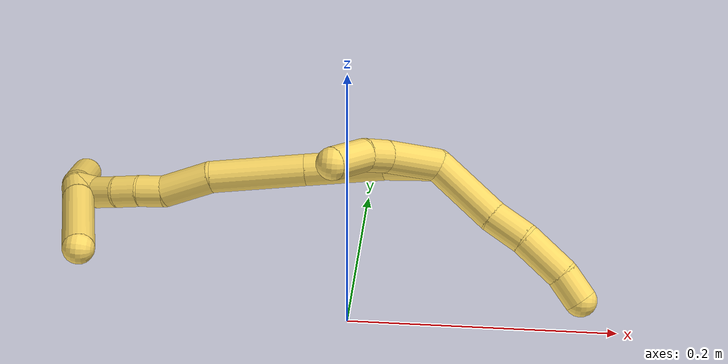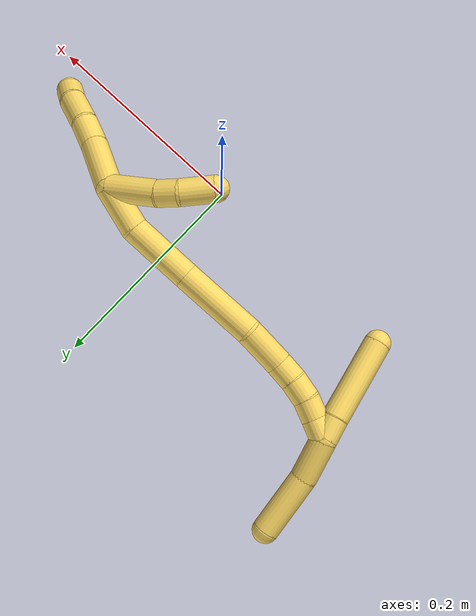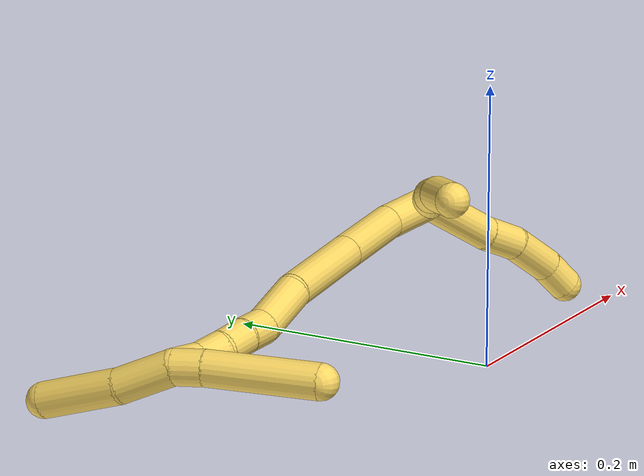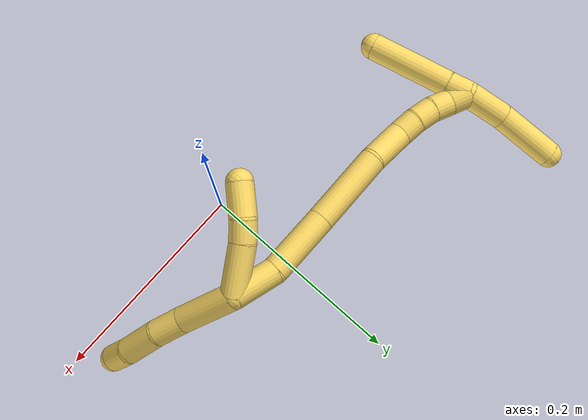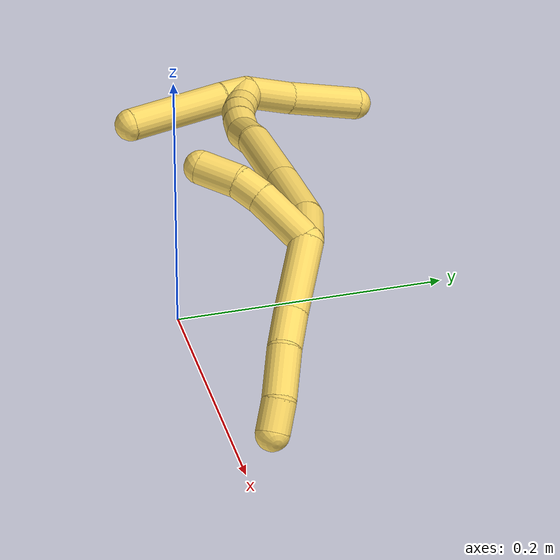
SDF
<sdf version="1.7">
 <world name="default">
  <model name="5">
   <static>0</static>
   <link name="5">
    <collision name="collision-cylinder-e_1_2_8">
     <pose>0.014771 -0.010506 -0.022636 2.70706 0.53444 1.78441</pose>
     <geometry><cylinder><radius>0.0125</radius><length>0.057998</length></cylinder></geometry>
     <surface>
      <friction><ode><mu>1.16</mu><mu2>1.16</mu2><slip1>0</slip1><slip2>0</slip2></ode></friction>
      <contact><ode><kp>1e+06</kp><kd>1</kd><max_vel>0</max_vel><min_depth>0.001</min_depth></ode></contact>
     </surface>
    </collision>
    <visual name="visual-cylinder-e_1_2_8">
     <pose>0.014771 -0.010506 -0.022636 2.70706 0.53444 1.78441</pose>
     <geometry><cylinder><radius>0.0125</radius><length>0.057998</length></cylinder></geometry>
     <material><ambient>1 0.858824 0.4 1</ambient></material>
    </visual>
    <collision name="collision-cylinder-e_2_8_9">
     <pose>0.036341 -0.024667 -0.057781 2.85727 0.480855 2.08477</pose>
     <geometry><cylinder><radius>0.0125</radius><length>0.029398</length></cylinder></geometry>
     <surface>
      <friction><ode><mu>1.16</mu><mu2>1.16</mu2><slip1>0</slip1><slip2>0</slip2></ode></friction>
      <contact><ode><kp>1e+06</kp><kd>1</kd><max_vel>0</max_vel><min_depth>0.001</min_depth></ode></contact>
     </surface>
    </collision>
    <visual name="visual-cylinder-e_2_8_9">
     <pose>0.036341 -0.024667 -0.057781 2.85727 0.480855 2.08477</pose>
     <geometry><cylinder><radius>0.0125</radius><length>0.029398</length></cylinder></geometry>
     <material><ambient>1 0.858824 0.4 1</ambient></material>
    </visual>
    <collision name="collision-cylinder-e_3_9_10">
     <pose>0.051261 -0.036838 -0.085452 2.62985 0.436927 1.40739</pose>
     <geometry><cylinder><radius>0.0125</radius><length>0.038384</length></cylinder></geometry>
     <surface>
      <friction><ode><mu>1.16</mu><mu2>1.16</mu2><slip1>0</slip1><slip2>0</slip2></ode></friction>
      <contact><ode><kp>1e+06</kp><kd>1</kd><max_vel>0</max_vel><min_depth>0.001</min_depth></ode></contact>
     </surface>
    </collision>
    <visual name="visual-cylinder-e_3_9_10">
     <pose>0.051261 -0.036838 -0.085452 2.62985 0.436927 1.40739</pose>
     <geometry><cylinder><radius>0.0125</radius><length>0.038384</length></cylinder></geometry>
     <material><ambient>1 0.858824 0.4 1</ambient></material>
    </visual>
    <collision name="collision-cylinder-e_4_10_6">
     <pose>0.065449 -0.052352 -0.108414 2.41036 0.524755 1.22351</pose>
     <geometry><cylinder><radius>0.0125</radius><length>0.02422</length></cylinder></geometry>
     <surface>
      <friction><ode><mu>1.16</mu><mu2>1.16</mu2><slip1>0</slip1><slip2>0</slip2></ode></friction>
      <contact><ode><kp>1e+06</kp><kd>1</kd><max_vel>0</max_vel><min_depth>0.001</min_depth></ode></contact>
     </surface>
    </collision>
    <visual name="visual-cylinder-e_4_10_6">
     <pose>0.065449 -0.052352 -0.108414 2.41036 0.524755 1.22351</pose>
     <geometry><cylinder><radius>0.0125</radius><length>0.02422</length></cylinder></geometry>
     <material><ambient>1 0.858824 0.4 1</ambient></material>
    </visual>
    <collision name="collision-cylinder-e_1_2_11">
     <pose>0.009322 0.008857 0.020146 -0.414187 0.400695 -0.085281</pose>
     <geometry><cylinder><radius>0.0125</radius><length>0.0478</length></cylinder></geometry>
     <surface>
      <friction><ode><mu>1.16</mu><mu2>1.16</mu2><slip1>0</slip1><slip2>0</slip2></ode></friction>
      <contact><ode><kp>1e+06</kp><kd>1</kd><max_vel>0</max_vel><min_depth>0.001</min_depth></ode></contact>
     </surface>
    </collision>
    <visual name="visual-cylinder-e_1_2_11">
     <pose>0.009322 0.008857 0.020146 -0.414187 0.400695 -0.085281</pose>
     <geometry><cylinder><radius>0.0125</radius><length>0.0478</length></cylinder></geometry>
     <material><ambient>1 0.858824 0.4 1</ambient></material>
    </visual>
    <collision name="collision-cylinder-e_2_11_12">
     <pose>0.024073 0.021569 0.048148 -0.456234 0.55524 -0.132128</pose>
     <geometry><cylinder><radius>0.0125</radius><length>0.020596</length></cylinder></geometry>
     <surface>
      <friction><ode><mu>1.16</mu><mu2>1.16</mu2><slip1>0</slip1><slip2>0</slip2></ode></friction>
      <contact><ode><kp>1e+06</kp><kd>1</kd><max_vel>0</max_vel><min_depth>0.001</min_depth></ode></contact>
     </surface>
    </collision>
    <visual name="visual-cylinder-e_2_11_12">
     <pose>0.024073 0.021569 0.048148 -0.456234 0.55524 -0.132128</pose>
     <geometry><cylinder><radius>0.0125</radius><length>0.020596</length></cylinder></geometry>
     <material><ambient>1 0.858824 0.4 1</ambient></material>
    </visual>
    <collision name="collision-cylinder-e_3_12_5">
     <pose>0.040407 0.028503 0.067018 -0.272603 0.761602 -0.109705</pose>
     <geometry><cylinder><radius>0.0125</radius><length>0.031604</length></cylinder></geometry>
     <surface>
      <friction><ode><mu>1.16</mu><mu2>1.16</mu2><slip1>0</slip1><slip2>0</slip2></ode></friction>
      <contact><ode><kp>1e+06</kp><kd>1</kd><max_vel>0</max_vel><min_depth>0.001</min_depth></ode></contact>
     </surface>
    </collision>
    <visual name="visual-cylinder-e_3_12_5">
     <pose>0.040407 0.028503 0.067018 -0.272603 0.761602 -0.109705</pose>
     <geometry><cylinder><radius>0.0125</radius><length>0.031604</length></cylinder></geometry>
     <material><ambient>1 0.858824 0.4 1</ambient></material>
    </visual>
    <collision name="collision-cylinder-e_1_2_13">
     <pose>-0.00494 -0.006078 0.019911 0.296269 -0.232998 -0.034924</pose>
     <geometry><cylinder><radius>0.0125</radius><length>0.042792</length></cylinder></geometry>
     <surface>
      <friction><ode><mu>1.16</mu><mu2>1.16</mu2><slip1>0</slip1><slip2>0</slip2></ode></friction>
      <contact><ode><kp>1e+06</kp><kd>1</kd><max_vel>0</max_vel><min_depth>0.001</min_depth></ode></contact>
     </surface>
    </collision>
    <visual name="visual-cylinder-e_1_2_13">
     <pose>-0.00494 -0.006078 0.019911 0.296269 -0.232998 -0.034924</pose>
     <geometry><cylinder><radius>0.0125</radius><length>0.042792</length></cylinder></geometry>
     <material><ambient>1 0.858824 0.4 1</ambient></material>
    </visual>
    <collision name="collision-cylinder-e_2_13_14">
     <pose>-0.008936 -0.018053 0.070258 0.191376 0.030453 0.002923</pose>
     <geometry><cylinder><radius>0.0125</radius><length>0.062035</length></cylinder></geometry>
     <surface>
      <friction><ode><mu>1.16</mu><mu2>1.16</mu2><slip1>0</slip1><slip2>0</slip2></ode></friction>
      <contact><ode><kp>1e+06</kp><kd>1</kd><max_vel>0</max_vel><min_depth>0.001</min_depth></ode></contact>
     </surface>
    </collision>
    <visual name="visual-cylinder-e_2_13_14">
     <pose>-0.008936 -0.018053 0.070258 0.191376 0.030453 0.002923</pose>
     <geometry><cylinder><radius>0.0125</radius><length>0.062035</length></cylinder></geometry>
     <material><ambient>1 0.858824 0.4 1</ambient></material>
    </visual>
    <collision name="collision-cylinder-e_3_14_15">
     <pose>-0.00641 -0.030895 0.137193 0.188053 0.042549 0.004013</pose>
     <geometry><cylinder><radius>0.0125</radius><length>0.074373</length></cylinder></geometry>
     <surface>
      <friction><ode><mu>1.16</mu><mu2>1.16</mu2><slip1>0</slip1><slip2>0</slip2></ode></friction>
      <contact><ode><kp>1e+06</kp><kd>1</kd><max_vel>0</max_vel><min_depth>0.001</min_depth></ode></contact>
     </surface>
    </collision>
    <visual name="visual-cylinder-e_3_14_15">
     <pose>-0.00641 -0.030895 0.137193 0.188053 0.042549 0.004013</pose>
     <geometry><cylinder><radius>0.0125</radius><length>0.074373</length></cylinder></geometry>
     <material><ambient>1 0.858824 0.4 1</ambient></material>
    </visual>
    <collision name="collision-cylinder-e_4_15_16">
     <pose>-0.003964 -0.046747 0.19185 0.455987 0.042694 0.009908</pose>
     <geometry><cylinder><radius>0.0125</radius><length>0.040486</length></cylinder></geometry>
     <surface>
      <friction><ode><mu>1.16</mu><mu2>1.16</mu2><slip1>0</slip1><slip2>0</slip2></ode></friction>
      <contact><ode><kp>1e+06</kp><kd>1</kd><max_vel>0</max_vel><min_depth>0.001</min_depth></ode></contact>
     </surface>
    </collision>
    <visual name="visual-cylinder-e_4_15_16">
     <pose>-0.003964 -0.046747 0.19185 0.455987 0.042694 0.009908</pose>
     <geometry><cylinder><radius>0.0125</radius><length>0.040486</length></cylinder></geometry>
     <material><ambient>1 0.858824 0.4 1</ambient></material>
    </visual>
    <collision name="collision-cylinder-e_5_16_17">
     <pose>-0.004088 -0.057515 0.219931 0.185539 -0.097574 -0.009085</pose>
     <geometry><cylinder><radius>0.0125</radius><length>0.020289</length></cylinder></geometry>
     <surface>
      <friction><ode><mu>1.16</mu><mu2>1.16</mu2><slip1>0</slip1><slip2>0</slip2></ode></friction>
      <contact><ode><kp>1e+06</kp><kd>1</kd><max_vel>0</max_vel><min_depth>0.001</min_depth></ode></contact>
     </surface>
    </collision>
    <visual name="visual-cylinder-e_5_16_17">
     <pose>-0.004088 -0.057515 0.219931 0.185539 -0.097574 -0.009085</pose>
     <geometry><cylinder><radius>0.0125</radius><length>0.020289</length></cylinder></geometry>
     <material><ambient>1 0.858824 0.4 1</ambient></material>
    </visual>
    <collision name="collision-cylinder-e_6_17_18">
     <pose>-0.006739 -0.062422 0.239243 0.313546 -0.166896 -0.026441</pose>
     <geometry><cylinder><radius>0.0125</radius><length>0.020019</length></cylinder></geometry>
     <surface>
      <friction><ode><mu>1.16</mu><mu2>1.16</mu2><slip1>0</slip1><slip2>0</slip2></ode></friction>
      <contact><ode><kp>1e+06</kp><kd>1</kd><max_vel>0</max_vel><min_depth>0.001</min_depth></ode></contact>
     </surface>
    </collision>
    <visual name="visual-cylinder-e_6_17_18">
     <pose>-0.006739 -0.062422 0.239243 0.313546 -0.166896 -0.026441</pose>
     <geometry><cylinder><radius>0.0125</radius><length>0.020019</length></cylinder></geometry>
     <material><ambient>1 0.858824 0.4 1</ambient></material>
    </visual>
    <collision name="collision-cylinder-e_7_18_19">
     <pose>-0.011574 -0.069381 0.257273 0.425331 -0.322666 -0.070255</pose>
     <geometry><cylinder><radius>0.0125</radius><length>0.020004</length></cylinder></geometry>
     <surface>
      <friction><ode><mu>1.16</mu><mu2>1.16</mu2><slip1>0</slip1><slip2>0</slip2></ode></friction>
      <contact><ode><kp>1e+06</kp><kd>1</kd><max_vel>0</max_vel><min_depth>0.001</min_depth></ode></contact>
     </surface>
    </collision>
    <visual name="visual-cylinder-e_7_18_19">
     <pose>-0.011574 -0.069381 0.257273 0.425331 -0.322666 -0.070255</pose>
     <geometry><cylinder><radius>0.0125</radius><length>0.020004</length></cylinder></geometry>
     <material><ambient>1 0.858824 0.4 1</ambient></material>
    </visual>
    <collision name="collision-cylinder-e_8_19_1">
     <pose>-0.018832 -0.075131 0.274855 0.202487 -0.420902 -0.043396</pose>
     <geometry><cylinder><radius>0.0125</radius><length>0.020001</length></cylinder></geometry>
     <surface>
      <friction><ode><mu>1.16</mu><mu2>1.16</mu2><slip1>0</slip1><slip2>0</slip2></ode></friction>
      <contact><ode><kp>1e+06</kp><kd>1</kd><max_vel>0</max_vel><min_depth>0.001</min_depth></ode></contact>
     </surface>
    </collision>
    <visual name="visual-cylinder-e_8_19_1">
     <pose>-0.018832 -0.075131 0.274855 0.202487 -0.420902 -0.043396</pose>
     <geometry><cylinder><radius>0.0125</radius><length>0.020001</length></cylinder></geometry>
     <material><ambient>1 0.858824 0.4 1</ambient></material>
    </visual>
    <collision name="collision-cylinder-e_1_1_20">
     <pose>-0.012862 -0.074137 0.281367 -2.28043 1.21562 -1.97447</pose>
     <geometry><cylinder><radius>0.0125</radius><length>0.02145</length></cylinder></geometry>
     <surface>
      <friction><ode><mu>1.16</mu><mu2>1.16</mu2><slip1>0</slip1><slip2>0</slip2></ode></friction>
      <contact><ode><kp>1e+06</kp><kd>1</kd><max_vel>0</max_vel><min_depth>0.001</min_depth></ode></contact>
     </surface>
    </collision>
    <visual name="visual-cylinder-e_1_1_20">
     <pose>-0.012862 -0.074137 0.281367 -2.28043 1.21562 -1.97447</pose>
     <geometry><cylinder><radius>0.0125</radius><length>0.02145</length></cylinder></geometry>
     <material><ambient>1 0.858824 0.4 1</ambient></material>
    </visual>
    <collision name="collision-cylinder-e_2_20_4">
     <pose>0.034945 -0.063774 0.271152 -2.37261 1.29135 -2.15587</pose>
     <geometry><cylinder><radius>0.0125</radius><length>0.07855</length></cylinder></geometry>
     <surface>
      <friction><ode><mu>1.16</mu><mu2>1.16</mu2><slip1>0</slip1><slip2>0</slip2></ode></friction>
      <contact><ode><kp>1e+06</kp><kd>1</kd><max_vel>0</max_vel><min_depth>0.001</min_depth></ode></contact>
     </surface>
    </collision>
    <visual name="visual-cylinder-e_2_20_4">
     <pose>0.034945 -0.063774 0.271152 -2.37261 1.29135 -2.15587</pose>
     <geometry><cylinder><radius>0.0125</radius><length>0.07855</length></cylinder></geometry>
     <material><ambient>1 0.858824 0.4 1</ambient></material>
    </visual>
    <collision name="collision-cylinder-e_1_1_21">
     <pose>-0.038998 -0.088935 0.287411 1.27756 -0.909947 -0.696957</pose>
     <geometry><cylinder><radius>0.0125</radius><length>0.040737</length></cylinder></geometry>
     <surface>
      <friction><ode><mu>1.16</mu><mu2>1.16</mu2><slip1>0</slip1><slip2>0</slip2></ode></friction>
      <contact><ode><kp>1e+06</kp><kd>1</kd><max_vel>0</max_vel><min_depth>0.001</min_depth></ode></contact>
     </surface>
    </collision>
    <visual name="visual-cylinder-e_1_1_21">
     <pose>-0.038998 -0.088935 0.287411 1.27756 -0.909947 -0.696957</pose>
     <geometry><cylinder><radius>0.0125</radius><length>0.040737</length></cylinder></geometry>
     <material><ambient>1 0.858824 0.4 1</ambient></material>
    </visual>
    <collision name="collision-cylinder-e_2_21_3">
     <pose>-0.080938 -0.115282 0.292613 1.46075 -1.06074 -0.967193</pose>
     <geometry><cylinder><radius>0.0125</radius><length>0.059263</length></cylinder></geometry>
     <surface>
      <friction><ode><mu>1.16</mu><mu2>1.16</mu2><slip1>0</slip1><slip2>0</slip2></ode></friction>
      <contact><ode><kp>1e+06</kp><kd>1</kd><max_vel>0</max_vel><min_depth>0.001</min_depth></ode></contact>
     </surface>
    </collision>
    <visual name="visual-cylinder-e_2_21_3">
     <pose>-0.080938 -0.115282 0.292613 1.46075 -1.06074 -0.967193</pose>
     <geometry><cylinder><radius>0.0125</radius><length>0.059263</length></cylinder></geometry>
     <material><ambient>1 0.858824 0.4 1</ambient></material>
    </visual>
    <collision name="collision-sphere-3">
     <pose>-0.106798 -0.129661 0.294202 0 -0 0</pose>
     <geometry><sphere><radius>0.0125</radius></sphere></geometry>
     <surface>
      <friction><ode><mu>1.16</mu><mu2>1.16</mu2><slip1>0</slip1><slip2>0</slip2></ode></friction>
      <contact><ode><kp>1e+06</kp><kd>1</kd><max_vel>0</max_vel><min_depth>0.001</min_depth></ode></contact>
     </surface>
    </collision>
    <visual name="visual-sphere-3">
     <pose>-0.106798 -0.129661 0.294202 0 -0 0</pose>
     <geometry><sphere><radius>0.0125</radius></sphere></geometry>
     <material><ambient>1 0.858824 0.4 1</ambient></material>
    </visual>
    <collision name="collision-sphere-21">
     <pose>-0.055078 -0.100903 0.291024 0 -0 0</pose>
     <geometry><sphere><radius>0.0125</radius></sphere></geometry>
     <surface>
      <friction><ode><mu>1.16</mu><mu2>1.16</mu2><slip1>0</slip1><slip2>0</slip2></ode></friction>
      <contact><ode><kp>1e+06</kp><kd>1</kd><max_vel>0</max_vel><min_depth>0.001</min_depth></ode></contact>
     </surface>
    </collision>
    <visual name="visual-sphere-21">
     <pose>-0.055078 -0.100903 0.291024 0 -0 0</pose>
     <geometry><sphere><radius>0.0125</radius></sphere></geometry>
     <material><ambient>1 0.858824 0.4 1</ambient></material>
    </visual>
    <collision name="collision-sphere-4">
     <pose>0.072696 -0.056241 0.263367 0 -0 0</pose>
     <geometry><sphere><radius>0.0125</radius></sphere></geometry>
     <surface>
      <friction><ode><mu>1.16</mu><mu2>1.16</mu2><slip1>0</slip1><slip2>0</slip2></ode></friction>
      <contact><ode><kp>1e+06</kp><kd>1</kd><max_vel>0</max_vel><min_depth>0.001</min_depth></ode></contact>
     </surface>
    </collision>
    <visual name="visual-sphere-4">
     <pose>0.072696 -0.056241 0.263367 0 -0 0</pose>
     <geometry><sphere><radius>0.0125</radius></sphere></geometry>
     <material><ambient>1 0.858824 0.4 1</ambient></material>
    </visual>
    <collision name="collision-sphere-20">
     <pose>-0.002806 -0.071307 0.278937 0 -0 0</pose>
     <geometry><sphere><radius>0.0125</radius></sphere></geometry>
     <surface>
      <friction><ode><mu>1.16</mu><mu2>1.16</mu2><slip1>0</slip1><slip2>0</slip2></ode></friction>
      <contact><ode><kp>1e+06</kp><kd>1</kd><max_vel>0</max_vel><min_depth>0.001</min_depth></ode></contact>
     </surface>
    </collision>
    <visual name="visual-sphere-20">
     <pose>-0.002806 -0.071307 0.278937 0 -0 0</pose>
     <geometry><sphere><radius>0.0125</radius></sphere></geometry>
     <material><ambient>1 0.858824 0.4 1</ambient></material>
    </visual>
    <collision name="collision-sphere-11">
     <pose>0.018645 0.017713 0.040292 0 -0 0</pose>
     <geometry><sphere><radius>0.0125</radius></sphere></geometry>
     <surface>
      <friction><ode><mu>1.16</mu><mu2>1.16</mu2><slip1>0</slip1><slip2>0</slip2></ode></friction>
      <contact><ode><kp>1e+06</kp><kd>1</kd><max_vel>0</max_vel><min_depth>0.001</min_depth></ode></contact>
     </surface>
    </collision>
    <visual name="visual-sphere-11">
     <pose>0.018645 0.017713 0.040292 0 -0 0</pose>
     <geometry><sphere><radius>0.0125</radius></sphere></geometry>
     <material><ambient>1 0.858824 0.4 1</ambient></material>
    </visual>
    <collision name="collision-sphere-6">
     <pose>0.071516 -0.059351 -0.116215 0 -0 0</pose>
     <geometry><sphere><radius>0.0125</radius></sphere></geometry>
     <surface>
      <friction><ode><mu>1.16</mu><mu2>1.16</mu2><slip1>0</slip1><slip2>0</slip2></ode></friction>
      <contact><ode><kp>1e+06</kp><kd>1</kd><max_vel>0</max_vel><min_depth>0.001</min_depth></ode></contact>
     </surface>
    </collision>
    <visual name="visual-sphere-6">
     <pose>0.071516 -0.059351 -0.116215 0 -0 0</pose>
     <geometry><sphere><radius>0.0125</radius></sphere></geometry>
     <material><ambient>1 0.858824 0.4 1</ambient></material>
    </visual>
    <collision name="collision-sphere-10">
     <pose>0.059382 -0.045353 -0.100613 0 -0 0</pose>
     <geometry><sphere><radius>0.0125</radius></sphere></geometry>
     <surface>
      <friction><ode><mu>1.16</mu><mu2>1.16</mu2><slip1>0</slip1><slip2>0</slip2></ode></friction>
      <contact><ode><kp>1e+06</kp><kd>1</kd><max_vel>0</max_vel><min_depth>0.001</min_depth></ode></contact>
     </surface>
    </collision>
    <visual name="visual-sphere-10">
     <pose>0.059382 -0.045353 -0.100613 0 -0 0</pose>
     <geometry><sphere><radius>0.0125</radius></sphere></geometry>
     <material><ambient>1 0.858824 0.4 1</ambient></material>
    </visual>
    <collision name="collision-sphere-9">
     <pose>0.04314 -0.028323 -0.07029 0 -0 0</pose>
     <geometry><sphere><radius>0.0125</radius></sphere></geometry>
     <surface>
      <friction><ode><mu>1.16</mu><mu2>1.16</mu2><slip1>0</slip1><slip2>0</slip2></ode></friction>
      <contact><ode><kp>1e+06</kp><kd>1</kd><max_vel>0</max_vel><min_depth>0.001</min_depth></ode></contact>
     </surface>
    </collision>
    <visual name="visual-sphere-9">
     <pose>0.04314 -0.028323 -0.07029 0 -0 0</pose>
     <geometry><sphere><radius>0.0125</radius></sphere></geometry>
     <material><ambient>1 0.858824 0.4 1</ambient></material>
    </visual>
    <collision name="collision-sphere-2">
     <geometry><sphere><radius>0.0125</radius></sphere></geometry>
     <surface>
      <friction><ode><mu>1.16</mu><mu2>1.16</mu2><slip1>0</slip1><slip2>0</slip2></ode></friction>
      <contact><ode><kp>1e+06</kp><kd>1</kd><max_vel>0</max_vel><min_depth>0.001</min_depth></ode></contact>
     </surface>
    </collision>
    <visual name="visual-sphere-2">
     <geometry><sphere><radius>0.0125</radius></sphere></geometry>
     <material><ambient>1 0.858824 0.4 1</ambient></material>
    </visual>
    <collision name="collision-sphere-19">
     <pose>-0.014745 -0.073295 0.265914 0 -0 0</pose>
     <geometry><sphere><radius>0.0125</radius></sphere></geometry>
     <surface>
      <friction><ode><mu>1.16</mu><mu2>1.16</mu2><slip1>0</slip1><slip2>0</slip2></ode></friction>
      <contact><ode><kp>1e+06</kp><kd>1</kd><max_vel>0</max_vel><min_depth>0.001</min_depth></ode></contact>
     </surface>
    </collision>
    <visual name="visual-sphere-19">
     <pose>-0.014745 -0.073295 0.265914 0 -0 0</pose>
     <geometry><sphere><radius>0.0125</radius></sphere></geometry>
     <material><ambient>1 0.858824 0.4 1</ambient></material>
    </visual>
    <collision name="collision-sphere-8">
     <pose>0.029542 -0.021011 -0.045272 0 -0 0</pose>
     <geometry><sphere><radius>0.0125</radius></sphere></geometry>
     <surface>
      <friction><ode><mu>1.16</mu><mu2>1.16</mu2><slip1>0</slip1><slip2>0</slip2></ode></friction>
      <contact><ode><kp>1e+06</kp><kd>1</kd><max_vel>0</max_vel><min_depth>0.001</min_depth></ode></contact>
     </surface>
    </collision>
    <visual name="visual-sphere-8">
     <pose>0.029542 -0.021011 -0.045272 0 -0 0</pose>
     <geometry><sphere><radius>0.0125</radius></sphere></geometry>
     <material><ambient>1 0.858824 0.4 1</ambient></material>
    </visual>
    <collision name="collision-sphere-12">
     <pose>0.029502 0.025424 0.056004 0 -0 0</pose>
     <geometry><sphere><radius>0.0125</radius></sphere></geometry>
     <surface>
      <friction><ode><mu>1.16</mu><mu2>1.16</mu2><slip1>0</slip1><slip2>0</slip2></ode></friction>
      <contact><ode><kp>1e+06</kp><kd>1</kd><max_vel>0</max_vel><min_depth>0.001</min_depth></ode></contact>
     </surface>
    </collision>
    <visual name="visual-sphere-12">
     <pose>0.029502 0.025424 0.056004 0 -0 0</pose>
     <geometry><sphere><radius>0.0125</radius></sphere></geometry>
     <material><ambient>1 0.858824 0.4 1</ambient></material>
    </visual>
    <collision name="collision-sphere-5">
     <pose>0.051311 0.031582 0.078032 0 -0 0</pose>
     <geometry><sphere><radius>0.0125</radius></sphere></geometry>
     <surface>
      <friction><ode><mu>1.16</mu><mu2>1.16</mu2><slip1>0</slip1><slip2>0</slip2></ode></friction>
      <contact><ode><kp>1e+06</kp><kd>1</kd><max_vel>0</max_vel><min_depth>0.001</min_depth></ode></contact>
     </surface>
    </collision>
    <visual name="visual-sphere-5">
     <pose>0.051311 0.031582 0.078032 0 -0 0</pose>
     <geometry><sphere><radius>0.0125</radius></sphere></geometry>
     <material><ambient>1 0.858824 0.4 1</ambient></material>
    </visual>
    <collision name="collision-sphere-13">
     <pose>-0.00988 -0.012156 0.039821 0 -0 0</pose>
     <geometry><sphere><radius>0.0125</radius></sphere></geometry>
     <surface>
      <friction><ode><mu>1.16</mu><mu2>1.16</mu2><slip1>0</slip1><slip2>0</slip2></ode></friction>
      <contact><ode><kp>1e+06</kp><kd>1</kd><max_vel>0</max_vel><min_depth>0.001</min_depth></ode></contact>
     </surface>
    </collision>
    <visual name="visual-sphere-13">
     <pose>-0.00988 -0.012156 0.039821 0 -0 0</pose>
     <geometry><sphere><radius>0.0125</radius></sphere></geometry>
     <material><ambient>1 0.858824 0.4 1</ambient></material>
    </visual>
    <collision name="collision-sphere-14">
     <pose>-0.007992 -0.02395 0.100695 0 -0 0</pose>
     <geometry><sphere><radius>0.0125</radius></sphere></geometry>
     <surface>
      <friction><ode><mu>1.16</mu><mu2>1.16</mu2><slip1>0</slip1><slip2>0</slip2></ode></friction>
      <contact><ode><kp>1e+06</kp><kd>1</kd><max_vel>0</max_vel><min_depth>0.001</min_depth></ode></contact>
     </surface>
    </collision>
    <visual name="visual-sphere-14">
     <pose>-0.007992 -0.02395 0.100695 0 -0 0</pose>
     <geometry><sphere><radius>0.0125</radius></sphere></geometry>
     <material><ambient>1 0.858824 0.4 1</ambient></material>
    </visual>
    <collision name="collision-sphere-15">
     <pose>-0.004828 -0.037841 0.173691 0 -0 0</pose>
     <geometry><sphere><radius>0.0125</radius></sphere></geometry>
     <surface>
      <friction><ode><mu>1.16</mu><mu2>1.16</mu2><slip1>0</slip1><slip2>0</slip2></ode></friction>
      <contact><ode><kp>1e+06</kp><kd>1</kd><max_vel>0</max_vel><min_depth>0.001</min_depth></ode></contact>
     </surface>
    </collision>
    <visual name="visual-sphere-15">
     <pose>-0.004828 -0.037841 0.173691 0 -0 0</pose>
     <geometry><sphere><radius>0.0125</radius></sphere></geometry>
     <material><ambient>1 0.858824 0.4 1</ambient></material>
    </visual>
    <collision name="collision-sphere-16">
     <pose>-0.0031 -0.055653 0.210008 0 -0 0</pose>
     <geometry><sphere><radius>0.0125</radius></sphere></geometry>
     <surface>
      <friction><ode><mu>1.16</mu><mu2>1.16</mu2><slip1>0</slip1><slip2>0</slip2></ode></friction>
      <contact><ode><kp>1e+06</kp><kd>1</kd><max_vel>0</max_vel><min_depth>0.001</min_depth></ode></contact>
     </surface>
    </collision>
    <visual name="visual-sphere-16">
     <pose>-0.0031 -0.055653 0.210008 0 -0 0</pose>
     <geometry><sphere><radius>0.0125</radius></sphere></geometry>
     <material><ambient>1 0.858824 0.4 1</ambient></material>
    </visual>
    <collision name="collision-sphere-17">
     <pose>-0.005077 -0.059378 0.229854 0 -0 0</pose>
     <geometry><sphere><radius>0.0125</radius></sphere></geometry>
     <surface>
      <friction><ode><mu>1.16</mu><mu2>1.16</mu2><slip1>0</slip1><slip2>0</slip2></ode></friction>
      <contact><ode><kp>1e+06</kp><kd>1</kd><max_vel>0</max_vel><min_depth>0.001</min_depth></ode></contact>
     </surface>
    </collision>
    <visual name="visual-sphere-17">
     <pose>-0.005077 -0.059378 0.229854 0 -0 0</pose>
     <geometry><sphere><radius>0.0125</radius></sphere></geometry>
     <material><ambient>1 0.858824 0.4 1</ambient></material>
    </visual>
    <collision name="collision-sphere-18">
     <pose>-0.008402 -0.065467 0.248632 0 -0 0</pose>
     <geometry><sphere><radius>0.0125</radius></sphere></geometry>
     <surface>
      <friction><ode><mu>1.16</mu><mu2>1.16</mu2><slip1>0</slip1><slip2>0</slip2></ode></friction>
      <contact><ode><kp>1e+06</kp><kd>1</kd><max_vel>0</max_vel><min_depth>0.001</min_depth></ode></contact>
     </surface>
    </collision>
    <visual name="visual-sphere-18">
     <pose>-0.008402 -0.065467 0.248632 0 -0 0</pose>
     <geometry><sphere><radius>0.0125</radius></sphere></geometry>
     <material><ambient>1 0.858824 0.4 1</ambient></material>
    </visual>
    <collision name="collision-sphere-1">
     <pose>-0.022918 -0.076966 0.283797 0 -0 0</pose>
     <geometry><sphere><radius>0.0125</radius></sphere></geometry>
     <surface>
      <friction><ode><mu>1.16</mu><mu2>1.16</mu2><slip1>0</slip1><slip2>0</slip2></ode></friction>
      <contact><ode><kp>1e+06</kp><kd>1</kd><max_vel>0</max_vel><min_depth>0.001</min_depth></ode></contact>
     </surface>
    </collision>
    <visual name="visual-sphere-1">
     <pose>-0.022918 -0.076966 0.283797 0 -0 0</pose>
     <geometry><sphere><radius>0.0125</radius></sphere></geometry>
     <material><ambient>1 0.858824 0.4 1</ambient></material>
    </visual>
    <inertial>
     <pose>0.002068 -0.04024 0.126155 0 -0 0</pose>
     <mass>0.75</mass>
     <inertia><ixx>0.000104</ixx><ixy>0</ixy><ixz>0</ixz><iyy>0.000159</iyy><iyz>0</iyz><izz>6e-06</izz></inertia>
    </inertial>
   </link>
   <pose>0.061726 0.080751 0.093217 1.48917 0.204207 -1.55767</pose>
  </model>
 </world>
</sdf>
